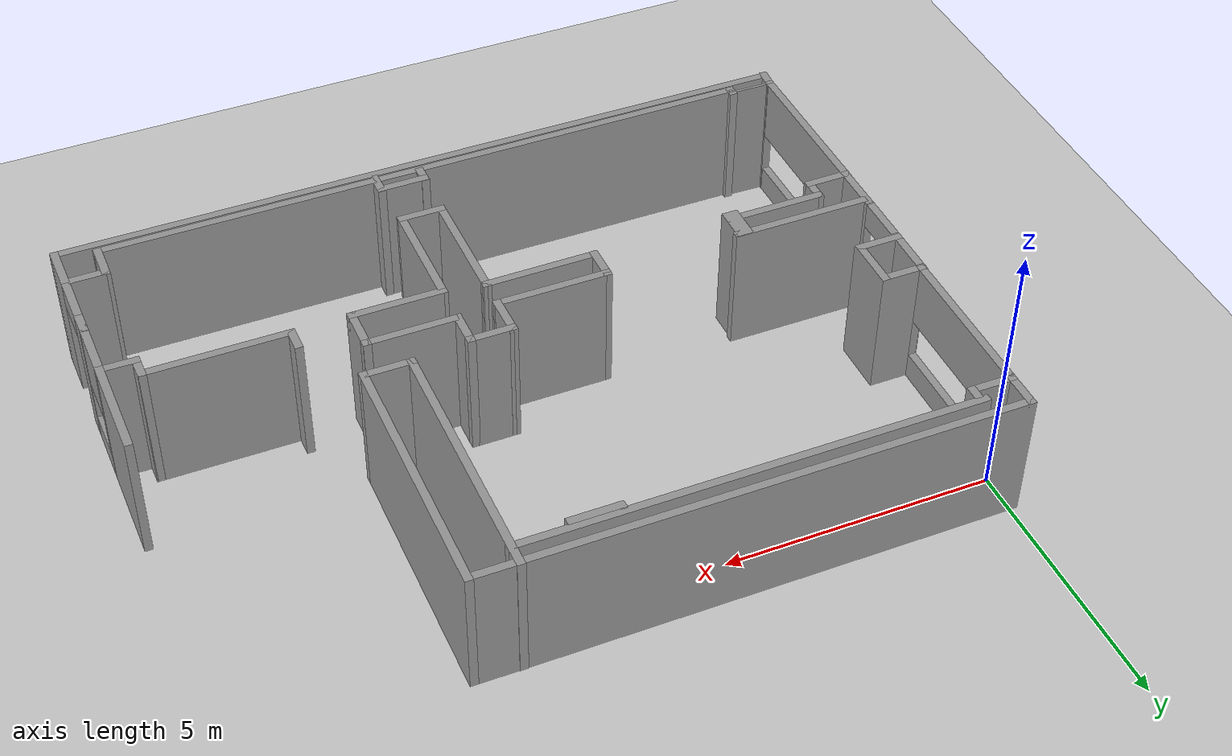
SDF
<sdf version="1.6">
 <world name="default">
  <light name="sun" type="directional">
   <pose>0 0 10 0 -0 0</pose>
   <diffuse>0.8 0.8 0.8 1</diffuse>
   <specular>0.1 0.1 0.1 1</specular>
   <attenuation>
    <range>1000</range>
    <constant>0.9</constant>
    <linear>0.01</linear>
    <quadratic>0.001</quadratic>
   </attenuation>
   <direction>-0.5 0.5 -1</direction>
  </light>
  <model name="ground_plane">
   <static>1</static>
   <link name="link">
    <collision name="collision">
     <geometry><plane><normal>0 0 1</normal><size>100 100</size></plane></geometry>
     <surface><friction><ode><mu>100</mu><mu2>50</mu2></ode></friction></surface>
    </collision>
    <visual name="visual">
     <cast_shadows>0</cast_shadows>
     <geometry><plane><normal>0 0 1</normal><size>100 100</size></plane></geometry>
     <material>
      <script><uri>file://media/materials/scripts/gazebo.material</uri><name>Gazebo/Grey</name></script>
     </material>
    </visual>
   </link>
  </model>
  <gravity>0 0 -9.8</gravity>
  <magnetic_field>6e-06 2.3e-05 -4.2e-05</magnetic_field>
  <atmosphere type="adiabatic"/>
  <physics name="default_physics" default="0" type="ode">
   <max_step_size>0.001</max_step_size>
   <real_time_factor>1</real_time_factor>
   <real_time_update_rate>1000</real_time_update_rate>
  </physics>
  <scene><ambient>0.4 0.4 0.4 1</ambient><background>0.7 0.7 0.7 1</background><shadows>1</shadows></scene>
  <spherical_coordinates>
   <surface_model>EARTH_WGS84</surface_model>
   <latitude_deg>0</latitude_deg>
   <longitude_deg>0</longitude_deg>
   <elevation>0</elevation>
   <heading_deg>0</heading_deg>
  </spherical_coordinates>
  <model name="dodo_gazeebo">
   <pose>6.83764 -4.25008 0 0 -0 0</pose>
   <link name="Wall_100">
    <collision name="Wall_100_Collision">
     <geometry><box><size>0.5 0.15 2.5</size></box></geometry>
     <pose>0 0 1.25 0 -0 0</pose>
    </collision>
    <visual name="Wall_100_Visual">
     <pose>0 0 1.25 0 -0 0</pose>
     <geometry><box><size>0.5 0.15 2.5</size></box></geometry>
     <material>
      <script><uri>file://media/materials/scripts/gazebo.material</uri><name>Gazebo/Grey</name></script>
      <ambient>1 1 1 1</ambient>
     </material>
    </visual>
    <pose>3.71386 -1.20721 0 0 0 -1.5708</pose>
   </link>
   <link name="Wall_102">
    <collision name="Wall_102_Collision">
     <geometry><box><size>2.75 0.15 2.5</size></box></geometry>
     <pose>0 0 1.25 0 -0 0</pose>
    </collision>
    <visual name="Wall_102_Visual">
     <pose>0 0 1.25 0 -0 0</pose>
     <geometry><box><size>2.75 0.15 2.5</size></box></geometry>
     <material>
      <script><uri>file://media/materials/scripts/gazebo.material</uri><name>Gazebo/Grey</name></script>
      <ambient>1 1 1 1</ambient>
     </material>
    </visual>
    <pose>5.01386 -1.38221 0 0 -0 0</pose>
   </link>
   <link name="Wall_104">
    <collision name="Wall_104_Collision">
     <geometry><box><size>0.5 0.15 2.5</size></box></geometry>
     <pose>0 0 1.25 0 -0 0</pose>
    </collision>
    <visual name="Wall_104_Visual">
     <pose>0 0 1.25 0 -0 0</pose>
     <geometry><box><size>0.5 0.15 2.5</size></box></geometry>
     <material>
      <script><uri>file://media/materials/scripts/gazebo.material</uri><name>Gazebo/Grey</name></script>
      <ambient>1 1 1 1</ambient>
     </material>
    </visual>
    <pose>6.31386 -1.55721 0 0 0 -1.5708</pose>
   </link>
   <link name="Wall_105">
    <collision name="Wall_105_Collision">
     <geometry><box><size>0.768325 0.15 2.5</size></box></geometry>
     <pose>0 0 1.25 0 -0 0</pose>
    </collision>
    <visual name="Wall_105_Visual">
     <pose>0 0 1.25 0 -0 0</pose>
     <geometry><box><size>0.768325 0.15 2.5</size></box></geometry>
     <material>
      <script><uri>file://media/materials/scripts/gazebo.material</uri><name>Gazebo/Grey</name></script>
      <ambient>1 1 1 1</ambient>
     </material>
    </visual>
    <pose>6.62299 -1.73645 0 0 0 -0.013725</pose>
   </link>
   <link name="Wall_106">
    <collision name="Wall_106_Collision">
     <geometry><box><size>2.00283 0.15 2.5</size></box></geometry>
     <pose>0 0 1.25 0 -0 0</pose>
    </collision>
    <visual name="Wall_106_Visual">
     <pose>0 0 1.25 0 -0 0</pose>
     <geometry><box><size>2.00283 0.15 2.5</size></box></geometry>
     <material>
      <script><uri>file://media/materials/scripts/gazebo.material</uri><name>Gazebo/Grey</name></script>
      <ambient>1 1 1 1</ambient>
     </material>
    </visual>
    <pose>6.93159 -0.814279 0 0 -0 1.57137</pose>
   </link>
   <link name="Wall_110">
    <pose>6.9326 -2.29439 0 0 -0 1.57165</pose>
    <visual name="Wall_110_Visual_0">
     <pose>-0.550304 0 1.25 0 -0 0</pose>
     <geometry><box><size>0.162404 0.15 2.5</size></box></geometry>
     <material>
      <script><uri>file://media/materials/scripts/gazebo.material</uri><name>Gazebo/Grey</name></script>
      <ambient>1 1 1 1</ambient>
     </material>
    </visual>
    <collision name="Wall_110_Collision_0">
     <geometry><box><size>0.162404 0.15 2.5</size></box></geometry>
     <pose>-0.550304 0 1.25 0 -0 0</pose>
    </collision>
    <visual name="Wall_110_Visual_1">
     <pose>0.081202 0 0.25 0 -0 0</pose>
     <geometry><box><size>1.10061 0.15 0.5</size></box></geometry>
     <material>
      <script><uri>file://media/materials/scripts/gazebo.material</uri><name>Gazebo/Grey</name></script>
      <ambient>1 1 1 1</ambient>
     </material>
    </visual>
    <collision name="Wall_110_Collision_1">
     <geometry><box><size>1.10061 0.15 0.5</size></box></geometry>
     <pose>0.081202 0 0.25 0 -0 0</pose>
    </collision>
    <visual name="Wall_110_Visual_2">
     <pose>0.560975 0 1.5 0 -0 0</pose>
     <geometry><box><size>0.141063 0.15 2</size></box></geometry>
     <material>
      <script><uri>file://media/materials/scripts/gazebo.material</uri><name>Gazebo/Grey</name></script>
      <ambient>1 1 1 1</ambient>
     </material>
    </visual>
    <collision name="Wall_110_Collision_2">
     <geometry><box><size>0.141063 0.15 2</size></box></geometry>
     <pose>0.560975 0 1.5 0 -0 0</pose>
    </collision>
    <visual name="Wall_110_Visual_3">
     <pose>0.010671 0 1.9 0 -0 0</pose>
     <geometry><box><size>0.959546 0.15 1.2</size></box></geometry>
     <material>
      <script><uri>file://media/materials/scripts/gazebo.material</uri><name>Gazebo/Grey</name></script>
      <ambient>1 1 1 1</ambient>
     </material>
    </visual>
    <collision name="Wall_110_Collision_3">
     <geometry><box><size>0.959546 0.15 1.2</size></box></geometry>
     <pose>0.010671 0 1.9 0 -0 0</pose>
    </collision>
   </link>
   <link name="Wall_120">
    <pose>6.9376 -3.89296 0 0 0 -1.56645</pose>
    <visual name="Wall_120_Visual_0">
     <pose>-0.898621 0 1.25 0 -0 0</pose>
     <geometry><box><size>0.4369 0.15 2.5</size></box></geometry>
     <material>
      <script><uri>file://media/materials/scripts/gazebo.material</uri><name>Gazebo/Grey</name></script>
      <ambient>1 1 1 1</ambient>
     </material>
    </visual>
    <collision name="Wall_120_Collision_0">
     <geometry><box><size>0.4369 0.15 2.5</size></box></geometry>
     <pose>-0.898621 0 1.25 0 -0 0</pose>
    </collision>
    <visual name="Wall_120_Visual_1">
     <pose>0.66845 0 1.25 0 -0 0</pose>
     <geometry><box><size>0.897241 0.15 2.5</size></box></geometry>
     <material>
      <script><uri>file://media/materials/scripts/gazebo.material</uri><name>Gazebo/Grey</name></script>
      <ambient>1 1 1 1</ambient>
     </material>
    </visual>
    <collision name="Wall_120_Collision_1">
     <geometry><box><size>0.897241 0.15 2.5</size></box></geometry>
     <pose>0.66845 0 1.25 0 -0 0</pose>
    </collision>
    <visual name="Wall_120_Visual_2">
     <pose>-0.230171 0 2.25 0 -0 0</pose>
     <geometry><box><size>0.9 0.15 0.5</size></box></geometry>
     <material>
      <script><uri>file://media/materials/scripts/gazebo.material</uri><name>Gazebo/Grey</name></script>
      <ambient>1 1 1 1</ambient>
     </material>
    </visual>
    <collision name="Wall_120_Collision_2">
     <geometry><box><size>0.9 0.15 0.5</size></box></geometry>
     <pose>-0.230171 0 2.25 0 -0 0</pose>
    </collision>
   </link>
   <link name="Wall_122">
    <collision name="Wall_122_Collision">
     <geometry><box><size>14.0073 0.15 2.5</size></box></geometry>
     <pose>0 0 1.25 0 -0 0</pose>
    </collision>
    <visual name="Wall_122_Visual">
     <pose>0 0 1.25 0 -0 0</pose>
     <geometry><box><size>14.0073 0.15 2.5</size></box></geometry>
     <material>
      <script><uri>file://media/materials/scripts/gazebo.material</uri><name>Gazebo/Grey</name></script>
      <ambient>1 1 1 1</ambient>
     </material>
    </visual>
    <pose>0.01349 -4.92048 0 0 -0 3.1395</pose>
   </link>
   <link name="Wall_128">
    <collision name="Wall_128_Collision">
     <geometry><box><size>0.838932 0.05 2.5</size></box></geometry>
     <pose>0 0 1.25 0 -0 0</pose>
    </collision>
    <visual name="Wall_128_Visual">
     <pose>0 0 1.25 0 -0 0</pose>
     <geometry><box><size>0.838932 0.05 2.5</size></box></geometry>
     <material>
      <script><uri>file://media/materials/scripts/gazebo.material</uri><name>Gazebo/Grey</name></script>
      <ambient>1 1 1 1</ambient>
     </material>
    </visual>
    <pose>-6.51967 -4.63683 0 0 0 -0.026918</pose>
   </link>
   <link name="Wall_130">
    <collision name="Wall_130_Collision">
     <geometry><box><size>0.23782 0.15 2.5</size></box></geometry>
     <pose>0 0 1.25 0 -0 0</pose>
    </collision>
    <visual name="Wall_130_Visual">
     <pose>0 0 1.25 0 -0 0</pose>
     <geometry><box><size>0.23782 0.15 2.5</size></box></geometry>
     <material>
      <script><uri>file://media/materials/scripts/gazebo.material</uri><name>Gazebo/Grey</name></script>
      <ambient>1 1 1 1</ambient>
     </material>
    </visual>
    <pose>-6.12446 -4.6913 0 0 0 -1.55048</pose>
   </link>
   <link name="Wall_131">
    <collision name="Wall_131_Collision">
     <geometry><box><size>12.495 0.15 2.5</size></box></geometry>
     <pose>0 0 1.25 0 -0 0</pose>
    </collision>
    <visual name="Wall_131_Visual">
     <pose>0 0 1.25 0 -0 0</pose>
     <geometry><box><size>12.495 0.15 2.5</size></box></geometry>
     <material>
      <script><uri>file://media/materials/scripts/gazebo.material</uri><name>Gazebo/Grey</name></script>
      <ambient>1 1 1 1</ambient>
     </material>
    </visual>
    <pose>0.048952 -4.7413 0 0 0 -0.000996</pose>
   </link>
   <link name="Wall_132">
    <collision name="Wall_132_Collision">
     <geometry><box><size>0.75 0.15 2.5</size></box></geometry>
     <pose>0 0 1.25 0 -0 0</pose>
    </collision>
    <visual name="Wall_132_Visual">
     <pose>0 0 1.25 0 -0 0</pose>
     <geometry><box><size>0.75 0.15 2.5</size></box></geometry>
     <material>
      <script><uri>file://media/materials/scripts/gazebo.material</uri><name>Gazebo/Grey</name></script>
      <ambient>1 1 1 1</ambient>
     </material>
    </visual>
    <pose>6.22147 -4.44745 0 0 -0 1.5602</pose>
   </link>
   <link name="Wall_133">
    <collision name="Wall_133_Collision">
     <geometry><box><size>0.75 0.15 2.5</size></box></geometry>
     <pose>0 0 1.25 0 -0 0</pose>
    </collision>
    <visual name="Wall_133_Visual">
     <pose>0 0 1.25 0 -0 0</pose>
     <geometry><box><size>0.75 0.15 2.5</size></box></geometry>
     <material>
      <script><uri>file://media/materials/scripts/gazebo.material</uri><name>Gazebo/Grey</name></script>
      <ambient>1 1 1 1</ambient>
     </material>
    </visual>
    <pose>6.52465 -4.14745 0 0 -0 0</pose>
   </link>
   <link name="Wall_135">
    <collision name="Wall_135_Collision">
     <geometry><box><size>0.389469 0.15 2.5</size></box></geometry>
     <pose>0 0 1.25 0 -0 0</pose>
    </collision>
    <visual name="Wall_135_Visual">
     <pose>0 0 1.25 0 -0 0</pose>
     <geometry><box><size>0.389469 0.15 2.5</size></box></geometry>
     <material>
      <script><uri>file://media/materials/scripts/gazebo.material</uri><name>Gazebo/Grey</name></script>
      <ambient>1 1 1 1</ambient>
     </material>
    </visual>
    <pose>0.209738 -4.57384 0 0 -0 1.5708</pose>
   </link>
   <link name="Wall_136">
    <collision name="Wall_136_Collision">
     <geometry><box><size>0.988947 0.15 2.5</size></box></geometry>
     <pose>0 0 1.25 0 -0 0</pose>
    </collision>
    <visual name="Wall_136_Visual">
     <pose>0 0 1.25 0 -0 0</pose>
     <geometry><box><size>0.988947 0.15 2.5</size></box></geometry>
     <material>
      <script><uri>file://media/materials/scripts/gazebo.material</uri><name>Gazebo/Grey</name></script>
      <ambient>1 1 1 1</ambient>
     </material>
    </visual>
    <pose>0.629211 -4.46516 0 0 -0 0</pose>
   </link>
   <link name="Wall_137">
    <collision name="Wall_137_Collision">
     <geometry><box><size>0.5 0.15 2.5</size></box></geometry>
     <pose>0 0 1.25 0 -0 0</pose>
    </collision>
    <visual name="Wall_137_Visual">
     <pose>0 0 1.25 0 -0 0</pose>
     <geometry><box><size>0.5 0.15 2.5</size></box></geometry>
     <material>
      <script><uri>file://media/materials/scripts/gazebo.material</uri><name>Gazebo/Grey</name></script>
      <ambient>1 1 1 1</ambient>
     </material>
    </visual>
    <pose>1.04869 -4.62911 0 0 0 -1.5708</pose>
   </link>
   <link name="Wall_139">
    <pose>-6.93071 -3.09648 0 0 0 -1.56348</pose>
    <visual name="Wall_139_Visual_0">
     <pose>-1.53251 0 1.25 0 -0 0</pose>
     <geometry><box><size>0.144508 0.15 2.5</size></box></geometry>
     <material>
      <script><uri>file://media/materials/scripts/gazebo.material</uri><name>Gazebo/Grey</name></script>
      <ambient>1 1 1 1</ambient>
     </material>
    </visual>
    <collision name="Wall_139_Collision_0">
     <geometry><box><size>0.144508 0.15 2.5</size></box></geometry>
     <pose>-1.53251 0 1.25 0 -0 0</pose>
    </collision>
    <visual name="Wall_139_Visual_1">
     <pose>0.072254 0 0.25 0 -0 0</pose>
     <geometry><box><size>3.06502 0.15 0.5</size></box></geometry>
     <material>
      <script><uri>file://media/materials/scripts/gazebo.material</uri><name>Gazebo/Grey</name></script>
      <ambient>1 1 1 1</ambient>
     </material>
    </visual>
    <collision name="Wall_139_Collision_1">
     <geometry><box><size>3.06502 0.15 0.5</size></box></geometry>
     <pose>0.072254 0 0.25 0 -0 0</pose>
    </collision>
    <visual name="Wall_139_Visual_2">
     <pose>1.56268 0 1.5 0 -0 0</pose>
     <geometry><box><size>0.084171 0.15 2</size></box></geometry>
     <material>
      <script><uri>file://media/materials/scripts/gazebo.material</uri><name>Gazebo/Grey</name></script>
      <ambient>1 1 1 1</ambient>
     </material>
    </visual>
    <collision name="Wall_139_Collision_2">
     <geometry><box><size>0.084171 0.15 2</size></box></geometry>
     <pose>1.56268 0 1.5 0 -0 0</pose>
    </collision>
    <visual name="Wall_139_Visual_3">
     <pose>0.030168 0 1.9 0 -0 0</pose>
     <geometry><box><size>2.98084 0.15 1.2</size></box></geometry>
     <material>
      <script><uri>file://media/materials/scripts/gazebo.material</uri><name>Gazebo/Grey</name></script>
      <ambient>1 1 1 1</ambient>
     </material>
    </visual>
    <collision name="Wall_139_Collision_3">
     <geometry><box><size>2.98084 0.15 1.2</size></box></geometry>
     <pose>0.030168 0 1.9 0 -0 0</pose>
    </collision>
   </link>
   <link name="Wall_141">
    <collision name="Wall_141_Collision">
     <geometry><box><size>0.445118 0.15 2.5</size></box></geometry>
     <pose>0 0 1.25 0 -0 0</pose>
    </collision>
    <visual name="Wall_141_Visual">
     <pose>0 0 1.25 0 -0 0</pose>
     <geometry><box><size>0.445118 0.15 2.5</size></box></geometry>
     <material>
      <script><uri>file://media/materials/scripts/gazebo.material</uri><name>Gazebo/Grey</name></script>
      <ambient>1 1 1 1</ambient>
     </material>
    </visual>
    <pose>-6.92527 -4.77372 0 0 0 -1.64706</pose>
   </link>
   <link name="Wall_143">
    <pose>-6.91983 2.81418 0 0 0 -1.57218</pose>
    <visual name="Wall_143_Visual_0">
     <pose>-1.51839 0 1.25 0 -0 0</pose>
     <geometry><box><size>0.138173 0.15 2.5</size></box></geometry>
     <material>
      <script><uri>file://media/materials/scripts/gazebo.material</uri><name>Gazebo/Grey</name></script>
      <ambient>1 1 1 1</ambient>
     </material>
    </visual>
    <collision name="Wall_143_Collision_0">
     <geometry><box><size>0.138173 0.15 2.5</size></box></geometry>
     <pose>-1.51839 0 1.25 0 -0 0</pose>
    </collision>
    <visual name="Wall_143_Visual_1">
     <pose>0.069087 0 0.25 0 -0 0</pose>
     <geometry><box><size>3.03678 0.15 0.5</size></box></geometry>
     <material>
      <script><uri>file://media/materials/scripts/gazebo.material</uri><name>Gazebo/Grey</name></script>
      <ambient>1 1 1 1</ambient>
     </material>
    </visual>
    <collision name="Wall_143_Collision_1">
     <geometry><box><size>3.03678 0.15 0.5</size></box></geometry>
     <pose>0.069087 0 0.25 0 -0 0</pose>
    </collision>
    <visual name="Wall_143_Visual_2">
     <pose>1.5231 0 1.5 0 -0 0</pose>
     <geometry><box><size>0.128748 0.15 2</size></box></geometry>
     <material>
      <script><uri>file://media/materials/scripts/gazebo.material</uri><name>Gazebo/Grey</name></script>
      <ambient>1 1 1 1</ambient>
     </material>
    </visual>
    <collision name="Wall_143_Collision_2">
     <geometry><box><size>0.128748 0.15 2</size></box></geometry>
     <pose>1.5231 0 1.5 0 -0 0</pose>
    </collision>
    <visual name="Wall_143_Visual_3">
     <pose>0.004713 0 1.9 0 -0 0</pose>
     <geometry><box><size>2.90803 0.15 1.2</size></box></geometry>
     <material>
      <script><uri>file://media/materials/scripts/gazebo.material</uri><name>Gazebo/Grey</name></script>
      <ambient>1 1 1 1</ambient>
     </material>
    </visual>
    <collision name="Wall_143_Collision_3">
     <geometry><box><size>2.90803 0.15 1.2</size></box></geometry>
     <pose>0.004713 0 1.9 0 -0 0</pose>
    </collision>
   </link>
   <link name="Wall_15">
    <collision name="Wall_15_Collision">
     <geometry><box><size>1 0.15 2.5</size></box></geometry>
     <pose>0 0 1.25 0 -0 0</pose>
    </collision>
    <visual name="Wall_15_Visual">
     <pose>0 0 1.25 0 -0 0</pose>
     <geometry><box><size>1 0.15 2.5</size></box></geometry>
     <material>
      <script><uri>file://media/materials/scripts/gazebo.material</uri><name>Gazebo/Grey</name></script>
      <ambient>1 1 1 1</ambient>
     </material>
    </visual>
    <pose>2.50726 0.085344 0 0 -0 3.14159</pose>
   </link>
   <link name="Wall_16">
    <collision name="Wall_16_Collision">
     <geometry><box><size>5 0.15 2.5</size></box></geometry>
     <pose>0 0 1.25 0 -0 0</pose>
    </collision>
    <visual name="Wall_16_Visual">
     <pose>0 0 1.25 0 -0 0</pose>
     <geometry><box><size>5 0.15 2.5</size></box></geometry>
     <material>
      <script><uri>file://media/materials/scripts/gazebo.material</uri><name>Gazebo/Grey</name></script>
      <ambient>1 1 1 1</ambient>
     </material>
    </visual>
    <pose>2.08226 2.51034 0 0 -0 1.5708</pose>
   </link>
   <link name="Wall_18">
    <collision name="Wall_18_Collision">
     <geometry><box><size>0.29 0.15 2.5</size></box></geometry>
     <pose>0 0 1.25 0 -0 0</pose>
    </collision>
    <visual name="Wall_18_Visual">
     <pose>0 0 1.25 0 -0 0</pose>
     <geometry><box><size>0.29 0.15 2.5</size></box></geometry>
     <material>
      <script><uri>file://media/materials/scripts/gazebo.material</uri><name>Gazebo/Grey</name></script>
      <ambient>1 1 1 1</ambient>
     </material>
    </visual>
    <pose>-6.17674 4.39665 0 0 -0 1.5708</pose>
   </link>
   <link name="Wall_23">
    <collision name="Wall_23_Collision">
     <geometry><box><size>8.5 0.15 2.5</size></box></geometry>
     <pose>0 0 1.25 0 -0 0</pose>
    </collision>
    <visual name="Wall_23_Visual">
     <pose>0 0 1.25 0 -0 0</pose>
     <geometry><box><size>8.5 0.15 2.5</size></box></geometry>
     <material>
      <script><uri>file://media/materials/scripts/gazebo.material</uri><name>Gazebo/Grey</name></script>
      <ambient>1 1 1 1</ambient>
     </material>
    </visual>
    <pose>-2.08915 4.5879 0 0 -0 3.14159</pose>
   </link>
   <link name="Wall_25">
    <collision name="Wall_25_Collision">
     <geometry><box><size>0.25 0.15 2.5</size></box></geometry>
     <pose>0 0 1.25 0 -0 0</pose>
    </collision>
    <visual name="Wall_25_Visual">
     <pose>0 0 1.25 0 -0 0</pose>
     <geometry><box><size>0.25 0.15 2.5</size></box></geometry>
     <material>
      <script><uri>file://media/materials/scripts/gazebo.material</uri><name>Gazebo/Grey</name></script>
      <ambient>1 1 1 1</ambient>
     </material>
    </visual>
    <pose>0.187874 4.50489 0 0 0 -1.5708</pose>
   </link>
   <link name="Wall_26">
    <collision name="Wall_26_Collision">
     <geometry><box><size>1 0.15 2.5</size></box></geometry>
     <pose>0 0 1.25 0 -0 0</pose>
    </collision>
    <visual name="Wall_26_Visual">
     <pose>0 0 1.25 0 -0 0</pose>
     <geometry><box><size>1 0.15 2.5</size></box></geometry>
     <material>
      <script><uri>file://media/materials/scripts/gazebo.material</uri><name>Gazebo/Grey</name></script>
      <ambient>1 1 1 1</ambient>
     </material>
    </visual>
    <pose>0.612874 4.45489 0 0 -0 0</pose>
   </link>
   <link name="Wall_32">
    <collision name="Wall_32_Collision">
     <geometry><box><size>1.043 0.15 2.5</size></box></geometry>
     <pose>0 0 1.25 0 -0 0</pose>
    </collision>
    <visual name="Wall_32_Visual">
     <pose>0 0 1.25 0 -0 0</pose>
     <geometry><box><size>1.043 0.15 2.5</size></box></geometry>
     <material>
      <script><uri>file://media/materials/scripts/gazebo.material</uri><name>Gazebo/Grey</name></script>
      <ambient>1 1 1 1</ambient>
     </material>
    </visual>
    <pose>-6.93745 0.833386 0 0 0 -1.5772</pose>
   </link>
   <link name="Wall_35">
    <collision name="Wall_35_Collision">
     <geometry><box><size>0.891 0.15 2.5</size></box></geometry>
     <pose>0 0 1.25 0 -0 0</pose>
    </collision>
    <visual name="Wall_35_Visual">
     <pose>0 0 1.25 0 -0 0</pose>
     <geometry><box><size>0.891 0.15 2.5</size></box></geometry>
     <material>
      <script><uri>file://media/materials/scripts/gazebo.material</uri><name>Gazebo/Grey</name></script>
      <ambient>1 1 1 1</ambient>
     </material>
    </visual>
    <pose>-6.56981 0.386886 0 0 -0 0</pose>
   </link>
   <link name="Wall_37">
    <collision name="Wall_37_Collision">
     <geometry><box><size>1.043 0.15 2.5</size></box></geometry>
     <pose>0 0 1.25 0 -0 0</pose>
    </collision>
    <visual name="Wall_37_Visual">
     <pose>0 0 1.25 0 -0 0</pose>
     <geometry><box><size>1.043 0.15 2.5</size></box></geometry>
     <material>
      <script><uri>file://media/materials/scripts/gazebo.material</uri><name>Gazebo/Grey</name></script>
      <ambient>1 1 1 1</ambient>
     </material>
    </visual>
    <pose>-6.19931 0.833386 0 0 -0 1.5708</pose>
   </link>
   <link name="Wall_39">
    <collision name="Wall_39_Collision">
     <geometry><box><size>0.885282 0.15 2.5</size></box></geometry>
     <pose>0 0 1.25 0 -0 0</pose>
    </collision>
    <visual name="Wall_39_Visual">
     <pose>0 0 1.25 0 -0 0</pose>
     <geometry><box><size>0.885282 0.15 2.5</size></box></geometry>
     <material>
      <script><uri>file://media/materials/scripts/gazebo.material</uri><name>Gazebo/Grey</name></script>
      <ambient>1 1 1 1</ambient>
     </material>
    </visual>
    <pose>-6.56696 1.27989 0 0 -0 0</pose>
   </link>
   <link name="Wall_41">
    <pose>-6.94031 -0.163114 0 0 0 -1.5708</pose>
    <visual name="Wall_41_Visual_0">
     <pose>-0.53914 0 1.25 0 -0 0</pose>
     <geometry><box><size>0.171719 0.15 2.5</size></box></geometry>
     <material>
      <script><uri>file://media/materials/scripts/gazebo.material</uri><name>Gazebo/Grey</name></script>
      <ambient>1 1 1 1</ambient>
     </material>
    </visual>
    <collision name="Wall_41_Collision_0">
     <geometry><box><size>0.171719 0.15 2.5</size></box></geometry>
     <pose>-0.53914 0 1.25 0 -0 0</pose>
    </collision>
    <visual name="Wall_41_Visual_1">
     <pose>0.53586 0 1.25 0 -0 0</pose>
     <geometry><box><size>0.178281 0.15 2.5</size></box></geometry>
     <material>
      <script><uri>file://media/materials/scripts/gazebo.material</uri><name>Gazebo/Grey</name></script>
      <ambient>1 1 1 1</ambient>
     </material>
    </visual>
    <collision name="Wall_41_Collision_1">
     <geometry><box><size>0.178281 0.15 2.5</size></box></geometry>
     <pose>0.53586 0 1.25 0 -0 0</pose>
    </collision>
    <visual name="Wall_41_Visual_2">
     <pose>-0.003281 0 2.25 0 -0 0</pose>
     <geometry><box><size>0.9 0.15 0.5</size></box></geometry>
     <material>
      <script><uri>file://media/materials/scripts/gazebo.material</uri><name>Gazebo/Grey</name></script>
      <ambient>1 1 1 1</ambient>
     </material>
    </visual>
    <collision name="Wall_41_Collision_2">
     <geometry><box><size>0.9 0.15 0.5</size></box></geometry>
     <pose>-0.003281 0 2.25 0 -0 0</pose>
    </collision>
   </link>
   <link name="Wall_46">
    <collision name="Wall_46_Collision">
     <geometry><box><size>1.0037 0.15 2.5</size></box></geometry>
     <pose>0 0 1.25 0 -0 0</pose>
    </collision>
    <visual name="Wall_46_Visual">
     <pose>0 0 1.25 0 -0 0</pose>
     <geometry><box><size>1.0037 0.15 2.5</size></box></geometry>
     <material>
      <script><uri>file://media/materials/scripts/gazebo.material</uri><name>Gazebo/Grey</name></script>
      <ambient>1 1 1 1</ambient>
     </material>
    </visual>
    <pose>-6.93834 -1.13993 0 0 0 -1.56618</pose>
   </link>
   <link name="Wall_47">
    <collision name="Wall_47_Collision">
     <geometry><box><size>0.887072 0.15 2.5</size></box></geometry>
     <pose>0 0 1.25 0 -0 0</pose>
    </collision>
    <visual name="Wall_47_Visual">
     <pose>0 0 1.25 0 -0 0</pose>
     <geometry><box><size>0.887072 0.15 2.5</size></box></geometry>
     <material>
      <script><uri>file://media/materials/scripts/gazebo.material</uri><name>Gazebo/Grey</name></script>
      <ambient>1 1 1 1</ambient>
     </material>
    </visual>
    <pose>-6.56785 -1.56493 0 0 -0 0.00493</pose>
   </link>
   <link name="Wall_5">
    <collision name="Wall_5_Collision">
     <geometry><box><size>0.891 0.15 2.5</size></box></geometry>
     <pose>0 0 1.25 0 -0 0</pose>
    </collision>
    <visual name="Wall_5_Visual">
     <pose>0 0 1.25 0 -0 0</pose>
     <geometry><box><size>0.891 0.15 2.5</size></box></geometry>
     <material>
      <script><uri>file://media/materials/scripts/gazebo.material</uri><name>Gazebo/Grey</name></script>
      <ambient>1 1 1 1</ambient>
     </material>
    </visual>
    <pose>-6.54724 4.32665 0 0 -0 0</pose>
   </link>
   <link name="Wall_53">
    <collision name="Wall_53_Collision">
     <geometry><box><size>0.5 0.15 2.5</size></box></geometry>
     <pose>0 0 1.25 0 -0 0</pose>
    </collision>
    <visual name="Wall_53_Visual">
     <pose>0 0 1.25 0 -0 0</pose>
     <geometry><box><size>0.5 0.15 2.5</size></box></geometry>
     <material>
      <script><uri>file://media/materials/scripts/gazebo.material</uri><name>Gazebo/Grey</name></script>
      <ambient>1 1 1 1</ambient>
     </material>
    </visual>
    <pose>-6.19931 -1.38811 0 0 -0 1.5708</pose>
   </link>
   <link name="Wall_59">
    <collision name="Wall_59_Collision">
     <geometry><box><size>2.633 0.15 2.5</size></box></geometry>
     <pose>0 0 1.25 0 -0 0</pose>
    </collision>
    <visual name="Wall_59_Visual">
     <pose>0 0 1.25 0 -0 0</pose>
     <geometry><box><size>2.633 0.15 2.5</size></box></geometry>
     <material>
      <script><uri>file://media/materials/scripts/gazebo.material</uri><name>Gazebo/Grey</name></script>
      <ambient>1 1 1 1</ambient>
     </material>
    </visual>
    <pose>-5.62509 -0.775156 0 0 -0 3.14159</pose>
   </link>
   <link name="Wall_62">
    <collision name="Wall_62_Collision">
     <geometry><box><size>0.68 0.3 2.5</size></box></geometry>
     <pose>0 0 1.25 0 -0 0</pose>
    </collision>
    <visual name="Wall_62_Visual">
     <pose>0 0 1.25 0 -0 0</pose>
     <geometry><box><size>0.68 0.3 2.5</size></box></geometry>
     <material>
      <script><uri>file://media/materials/scripts/gazebo.material</uri><name>Gazebo/Grey</name></script>
      <ambient>1 1 1 1</ambient>
     </material>
    </visual>
    <pose>-4.4948 -1.05526 0 0 -0 1.5708</pose>
   </link>
   <link name="Wall_7">
    <collision name="Wall_7_Collision">
     <geometry><box><size>0.75 0.15 2.5</size></box></geometry>
     <pose>0 0 1.25 0 -0 0</pose>
    </collision>
    <visual name="Wall_7_Visual">
     <pose>0 0 1.25 0 -0 0</pose>
     <geometry><box><size>0.75 0.15 2.5</size></box></geometry>
     <material>
      <script><uri>file://media/materials/scripts/gazebo.material</uri><name>Gazebo/Grey</name></script>
      <ambient>1 1 1 1</ambient>
     </material>
    </visual>
    <pose>-6.91774 4.62665 0 0 -0 1.5708</pose>
   </link>
   <link name="Wall_70">
    <collision name="Wall_70_Collision">
     <geometry><box><size>1.9 0.15 2.5</size></box></geometry>
     <pose>0 0 1.25 0 -0 0</pose>
    </collision>
    <visual name="Wall_70_Visual">
     <pose>0 0 1.25 0 -0 0</pose>
     <geometry><box><size>1.9 0.15 2.5</size></box></geometry>
     <material>
      <script><uri>file://media/materials/scripts/gazebo.material</uri><name>Gazebo/Grey</name></script>
      <ambient>1 1 1 1</ambient>
     </material>
    </visual>
    <pose>-5.32431 -1.21311 0 0 -0 0</pose>
   </link>
   <link name="Wall_72">
    <collision name="Wall_72_Collision">
     <geometry><box><size>0.700966 0.15 2.5</size></box></geometry>
     <pose>0 0 1.25 0 -0 0</pose>
    </collision>
    <visual name="Wall_72_Visual">
     <pose>0 0 1.25 0 -0 0</pose>
     <geometry><box><size>0.700966 0.15 2.5</size></box></geometry>
     <material>
      <script><uri>file://media/materials/scripts/gazebo.material</uri><name>Gazebo/Grey</name></script>
      <ambient>1 1 1 1</ambient>
     </material>
    </visual>
    <pose>-1.81043 -0.999758 0 0 0 -1.57163</pose>
   </link>
   <link name="Wall_73">
    <collision name="Wall_73_Collision">
     <geometry><box><size>2.19379 0.15 2.5</size></box></geometry>
     <pose>0 0 1.25 0 -0 0</pose>
    </collision>
    <visual name="Wall_73_Visual">
     <pose>0 0 1.25 0 -0 0</pose>
     <geometry><box><size>2.19379 0.15 2.5</size></box></geometry>
     <material>
      <script><uri>file://media/materials/scripts/gazebo.material</uri><name>Gazebo/Grey</name></script>
      <ambient>1 1 1 1</ambient>
     </material>
    </visual>
    <pose>-0.788772 -1.26656 0 0 -0 0.004231</pose>
   </link>
   <link name="Wall_75">
    <collision name="Wall_75_Collision">
     <geometry><box><size>2.4 0.15 2.5</size></box></geometry>
     <pose>0 0 1.25 0 -0 0</pose>
    </collision>
    <visual name="Wall_75_Visual">
     <pose>0 0 1.25 0 -0 0</pose>
     <geometry><box><size>2.4 0.15 2.5</size></box></geometry>
     <material>
      <script><uri>file://media/materials/scripts/gazebo.material</uri><name>Gazebo/Grey</name></script>
      <ambient>1 1 1 1</ambient>
     </material>
    </visual>
    <pose>0.233115 -2.38724 0 0 0 -1.5708</pose>
   </link>
   <link name="Wall_78">
    <collision name="Wall_78_Collision">
     <geometry><box><size>0.9 0.15 2.5</size></box></geometry>
     <pose>0 0 1.25 0 -0 0</pose>
    </collision>
    <visual name="Wall_78_Visual">
     <pose>0 0 1.25 0 -0 0</pose>
     <geometry><box><size>0.9 0.15 2.5</size></box></geometry>
     <material>
      <script><uri>file://media/materials/scripts/gazebo.material</uri><name>Gazebo/Grey</name></script>
      <ambient>1 1 1 1</ambient>
     </material>
    </visual>
    <pose>0.608115 -3.51224 0 0 -0 0</pose>
   </link>
   <link name="Wall_8">
    <collision name="Wall_8_Collision">
     <geometry><box><size>10 0.15 2.5</size></box></geometry>
     <pose>0 0 1.25 0 -0 0</pose>
    </collision>
    <visual name="Wall_8_Visual">
     <pose>0 0 1.25 0 -0 0</pose>
     <geometry><box><size>10 0.15 2.5</size></box></geometry>
     <material>
      <script><uri>file://media/materials/scripts/gazebo.material</uri><name>Gazebo/Grey</name></script>
      <ambient>1 1 1 1</ambient>
     </material>
    </visual>
    <pose>-1.99274 4.92665 0 0 -0 0</pose>
   </link>
   <link name="Wall_80">
    <collision name="Wall_80_Collision">
     <geometry><box><size>2.26957 0.15 2.5</size></box></geometry>
     <pose>0 0 1.25 0 -0 0</pose>
    </collision>
    <visual name="Wall_80_Visual">
     <pose>0 0 1.25 0 -0 0</pose>
     <geometry><box><size>2.26957 0.15 2.5</size></box></geometry>
     <material>
      <script><uri>file://media/materials/scripts/gazebo.material</uri><name>Gazebo/Grey</name></script>
      <ambient>1 1 1 1</ambient>
     </material>
    </visual>
    <pose>0.985601 -2.45246 0 0 -0 1.56845</pose>
   </link>
   <link name="Wall_81">
    <collision name="Wall_81_Collision">
     <geometry><box><size>1.8 0.15 2.5</size></box></geometry>
     <pose>0 0 1.25 0 -0 0</pose>
    </collision>
    <visual name="Wall_81_Visual">
     <pose>0 0 1.25 0 -0 0</pose>
     <geometry><box><size>1.8 0.15 2.5</size></box></geometry>
     <material>
      <script><uri>file://media/materials/scripts/gazebo.material</uri><name>Gazebo/Grey</name></script>
      <ambient>1 1 1 1</ambient>
     </material>
    </visual>
    <pose>1.81309 -1.39268 0 0 -0 0</pose>
   </link>
   <link name="Wall_83">
    <collision name="Wall_83_Collision">
     <geometry><box><size>0.899452 0.15 2.5</size></box></geometry>
     <pose>0 0 1.25 0 -0 0</pose>
    </collision>
    <visual name="Wall_83_Visual">
     <pose>0 0 1.25 0 -0 0</pose>
     <geometry><box><size>0.899452 0.15 2.5</size></box></geometry>
     <material>
      <script><uri>file://media/materials/scripts/gazebo.material</uri><name>Gazebo/Grey</name></script>
      <ambient>1 1 1 1</ambient>
     </material>
    </visual>
    <pose>2.63809 -1.01796 0 0 -0 1.5708</pose>
   </link>
   <link name="Wall_85">
    <collision name="Wall_85_Collision">
     <geometry><box><size>1.79903 0.15 2.5</size></box></geometry>
     <pose>0 0 1.25 0 -0 0</pose>
    </collision>
    <visual name="Wall_85_Visual">
     <pose>0 0 1.25 0 -0 0</pose>
     <geometry><box><size>1.79903 0.15 2.5</size></box></geometry>
     <material>
      <script><uri>file://media/materials/scripts/gazebo.material</uri><name>Gazebo/Grey</name></script>
      <ambient>1 1 1 1</ambient>
     </material>
    </visual>
    <pose>1.81854 -0.643242 0 0 -0 3.14159</pose>
   </link>
   <link name="Wall_87">
    <collision name="Wall_87_Collision">
     <geometry><box><size>0.75 0.15 2.5</size></box></geometry>
     <pose>0 0 1.25 0 -0 0</pose>
    </collision>
    <visual name="Wall_87_Visual">
     <pose>0 0 1.25 0 -0 0</pose>
     <geometry><box><size>0.75 0.15 2.5</size></box></geometry>
     <material>
      <script><uri>file://media/materials/scripts/gazebo.material</uri><name>Gazebo/Grey</name></script>
      <ambient>1 1 1 1</ambient>
     </material>
    </visual>
    <pose>0.990754 -0.343242 0 0 -0 1.5708</pose>
   </link>
   <link name="Wall_89">
    <collision name="Wall_89_Collision">
     <geometry><box><size>0.915006 0.15 2.5</size></box></geometry>
     <pose>0 0 1.25 0 -0 0</pose>
    </collision>
    <visual name="Wall_89_Visual">
     <pose>0 0 1.25 0 -0 0</pose>
     <geometry><box><size>0.915006 0.15 2.5</size></box></geometry>
     <material>
      <script><uri>file://media/materials/scripts/gazebo.material</uri><name>Gazebo/Grey</name></script>
      <ambient>1 1 1 1</ambient>
     </material>
    </visual>
    <pose>0.608251 -0.043242 0 0 -0 3.14159</pose>
   </link>
   <link name="Wall_9">
    <collision name="Wall_9_Collision">
     <geometry><box><size>4.99169 0.15 2.5</size></box></geometry>
     <pose>0 0 1.25 0 -0 0</pose>
    </collision>
    <visual name="Wall_9_Visual">
     <pose>0 0 1.25 0 -0 0</pose>
     <geometry><box><size>4.99169 0.15 2.5</size></box></geometry>
     <material>
      <script><uri>file://media/materials/scripts/gazebo.material</uri><name>Gazebo/Grey</name></script>
      <ambient>1 1 1 1</ambient>
     </material>
    </visual>
    <pose>2.93226 2.506 0 0 0 -1.5708</pose>
   </link>
   <link name="Wall_90">
    <collision name="Wall_90_Collision">
     <geometry><box><size>0.831065 0.15 2.5</size></box></geometry>
     <pose>0 0 1.25 0 -0 0</pose>
    </collision>
    <visual name="Wall_90_Visual">
     <pose>0 0 1.25 0 -0 0</pose>
     <geometry><box><size>0.831065 0.15 2.5</size></box></geometry>
     <material>
      <script><uri>file://media/materials/scripts/gazebo.material</uri><name>Gazebo/Grey</name></script>
      <ambient>1 1 1 1</ambient>
     </material>
    </visual>
    <pose>0.231863 -0.383774 0 0 0 -1.56244</pose>
   </link>
   <link name="Wall_97">
    <collision name="Wall_97_Collision">
     <geometry><box><size>2.19491 0.15 2.5</size></box></geometry>
     <pose>0 0 1.25 0 -0 0</pose>
    </collision>
    <visual name="Wall_97_Visual">
     <pose>0 0 1.25 0 -0 0</pose>
     <geometry><box><size>2.19491 0.15 2.5</size></box></geometry>
     <material>
      <script><uri>file://media/materials/scripts/gazebo.material</uri><name>Gazebo/Grey</name></script>
      <ambient>1 1 1 1</ambient>
     </material>
    </visual>
    <pose>-0.787747 -0.724305 0 0 -0 0</pose>
   </link>
   <static>1</static>
  </model>
 </world>
</sdf>
